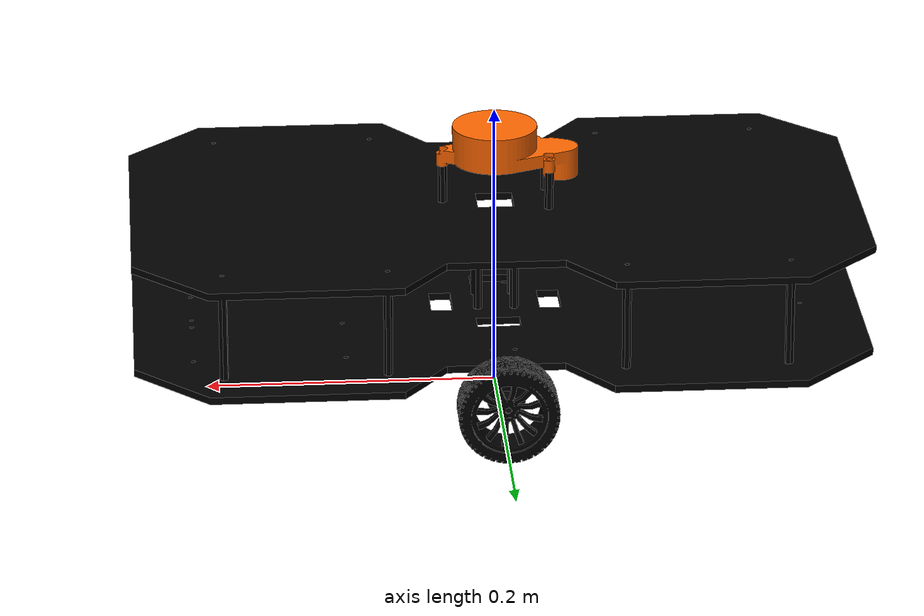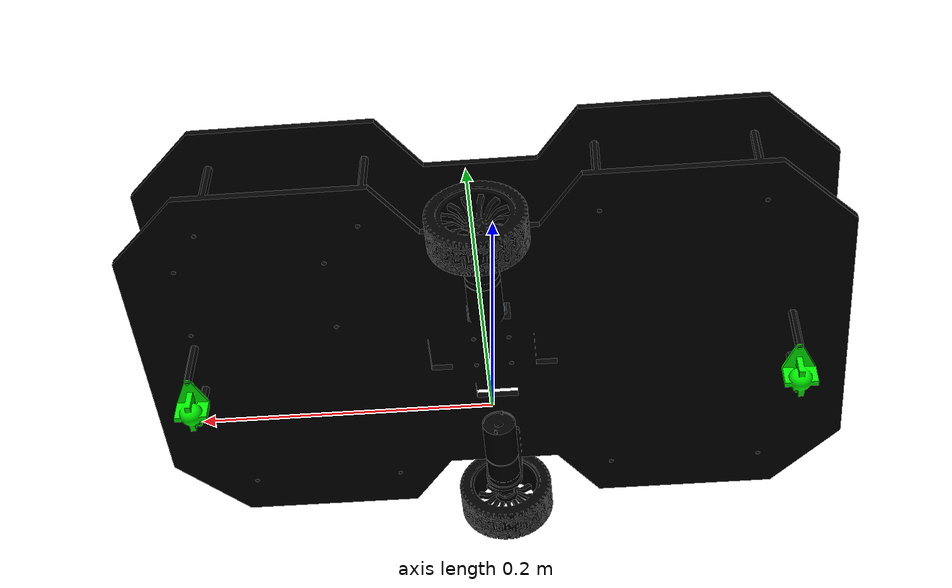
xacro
<?xml version="1.0"?>

<robot xmlns:xacro="http://ros.org/wiki/xacro" name="bumperbot">

    <!-- Mặc định dùng Ignition; có thể đổi khi chạy bằng is_ignition:=false. -->
    <xacro:arg name="is_ignition" default="true"/>
    <!--Chạy robot thật hay là robot mô phỏng-->
    <xacro:arg name="is_sim" default="true"/>

    <xacro:include filename = "$(find bumperbot_description)/urdf/bumperbot_gazebo.urdf.xacro"/>

    <!--Ros2 control-->
    <xacro:include filename = "$(find bumperbot_description)/urdf/bumperbot_ros2_control.xacro"/>
    <link name = 'base_footprint' />
    <!--Khai bao khớp và link base-->
    <link name = 'base_link'>
        <inertial>
            <origin xyz="0 0 0" rpy="0 0 0"/>
            <mass value="1.86646"/>
            <inertia ixx="0.01526994144" ixy="2.51002e-06" ixz="7.214361e-05"
                     iyy="0.03974477763" iyz="-4.9692e-07" izz="0.04941585770"/>
        </inertial>
        <visual>
            <origin xyz="0 0 0" rpy="0 0 0"/>
            <geometry>
                <mesh filename = "package://bumperbot_description/meshes/base.STL" scale = "0.001 0.001 0.001"/>
            </geometry>

            <material name="black">
                <color rgba="0 0 0 1"/>
            </material>
        </visual>

        <!-- Hop bao STL: x/y = +/-0.25/0.15 m, z = -0.035..0.11 m. -->
        <collision>
            <origin xyz="0 0 0.0375" rpy="0 0 0"/>
            <geometry>
                <box size="0.5 0.3 0.145"/>
            </geometry>
        </collision>
    </link>

    <joint name = 'base_footprint_joint' type = 'fixed'>
        <parent link ='base_footprint'/>
        <child link = 'base_link'/>
        <origin rpy="0 0 0" xyz="0 0 0.05413"/>
    </joint>

    <!--Khai bao khớp và link cho bánh xe phải-->

    <link name = "wheel_right_link" >
        <!-- SolidWorks: g -> kg, g*mm^2 -> kg*m^2 (x 1e-9).
             Doi dau cac tich quan tinh (positive tensor notation) cho URDF.
             COM va truc quan tinh duoc xoay cung mesh quanh X: -pi/2. -->
        <inertial>
            <origin xyz="0 -0.00004 0" rpy="0 0 0"/>
            <mass value="0.03517"/>
            <inertia ixx="1.538638e-05" ixy="-4.7e-10" ixz="0"
                     iyy="1.538669e-05" iyz="0" izz="2.578589e-05"/>
        </inertial>
        <visual>
            <origin xyz="0 0 0" rpy="0 0 0"/>
            <geometry>
                <mesh filename = "package://bumperbot_description/meshes/wheel_68mm.STL" scale = "0.001 0.001 0.001"/>
            </geometry>

            <material name="black">
                <color rgba="0 0 0 1"/>
            </material>
        </visual>
        <!-- Tru banh theo STL: R=34 mm, day=31.75 mm, tam Z=-2.375 mm.
             Xoay -pi/2 dua truc tru sang Y va tam sang Y=-2.375 mm. -->
        <collision>
            <origin xyz="0 -0.002375 0" rpy="${-pi/2} 0 0"/>
            <geometry>
                <cylinder radius="0.034" length="0.03175"/>
            </geometry>
        </collision>
    </link>

    <joint name = "wheel_right_base_joint" type = "continuous">
        <parent link = "base_link"/>
        <child link = "wheel_right_link"/>
        <origin xyz="0 -0.12825 -0.02013" rpy="0 0 0"/>
        <axis xyz="0 1 0"/>
    </joint>

    <link name = "wheel_left_link" >
        <!-- Cung thong so banh phai; COM va truc quan tinh xoay +pi/2. -->
        <inertial>
            <origin xyz="0 0.00004 0" rpy="0 0 0"/>
            <mass value="0.03517"/>
            <inertia ixx="1.538638e-05" ixy="-4.7e-10" ixz="0"
                     iyy="1.538669e-05" iyz="0" izz="2.578589e-05"/>
        </inertial>
        <visual>
            <origin xyz="0 0 0" rpy="${-pi} ${-pi} 0"/>
            <geometry>
                <mesh filename = "package://bumperbot_description/meshes/wheel_68mm.STL" scale = "0.001 0.001 0.001"/>
            </geometry>

            <material name="black">
                <color rgba="0 0 0 1"/>
            </material>
        </visual>
        <!-- Banh trai doi xung: tam tru Y=+2.375 mm. -->
        <collision>
            <origin xyz="0 0.002375 0" rpy="${pi/2} 0 0"/>
            <geometry>
                <cylinder radius="0.034" length="0.03175"/>
            </geometry>
        </collision>
    </link>

    <joint name = "wheel_left_base_joint" type = "continuous">
        <parent link = "base_link"/>
        <child link = "wheel_left_link"/>
        <origin xyz="0 +0.12825 -0.02013" rpy="0 0 0"/>
        <axis xyz="0 1 0"/>
    </joint>

    <link name = "caster_front_link" >
        <!-- Quan tinh tai COM tu SolidWorks, don vi kg va kg*m^2. -->
        <inertial>
            <origin xyz="-0.00003 0 0.00376" rpy="0 0 0"/>
            <mass value="0.00452"/>
            <inertia ixx="3.3451e-07" ixy="0" ixz="-1.5e-10"
                     iyy="2.4987e-07" iyz="0" izz="2.9746e-07"/>
        </inertial>
        <visual>
            <origin xyz="0 0 0" rpy="0 0 0"/>
            <geometry>
                <mesh filename = "package://bumperbot_description/meshes/ban_mat_trau_hoan_chinh.STL" scale = "0.001 0.001 0.001"/>
            </geometry>

            <material name="black">
                <color rgba="0 1 0 1"/>
            </material>
        </visual>
        <!-- Chi mo phong vien bi tiep dat R=8 mm, tam tai goc link.
             Gia do caster van hien thi bang STL. -->
        <collision>
            <origin xyz="0 0 0" rpy="0 0 0"/>
            <geometry>
                <sphere radius="0.008"/>
            </geometry>
        </collision>
    </link>

    <joint name = "caster_front_base_joint" type = "fixed">
        <parent link = "base_link"/>
        <child link = "caster_front_link"/>
        <origin xyz="0.21 0.0 -0.04613" rpy="0 0 0"/>
    </joint>

    <link name = "caster_rear_link" >
        <inertial>
            <origin xyz="-0.00003 0 0.00376" rpy="0 0 0"/>
            <mass value="0.00452"/>
            <inertia ixx="3.3451e-07" ixy="0" ixz="-1.5e-10"
                     iyy="2.4987e-07" iyz="0" izz="2.9746e-07"/>
        </inertial>
        <visual>
            <origin xyz="0 0 0" rpy="0 0 0"/>
            <geometry>
                <mesh filename = "package://bumperbot_description/meshes/ban_mat_trau_hoan_chinh.STL" scale = "0.001 0.001 0.001"/>
            </geometry>

            <material name="black">
                <color rgba="0 1 0 1"/>
            </material>
        </visual>
        <!-- Vien bi caster sau cung R=8 mm nhu caster truoc. -->
        <collision>
            <origin xyz="0 0 0" rpy="0 0 0"/>
            <geometry>
                <sphere radius="0.008"/>
            </geometry>
        </collision>
    </link>

    <joint name = "caster_rear_base_joint" type = "fixed">
        <parent link = "base_link"/>
        <child link = "caster_rear_link"/>
        <origin xyz="-0.21 0.0 -0.04613" rpy="0 0 0"/>
    </joint>

        <!--Khai bao khớp và link cho cảm biến IMU-->
    <link name = "imu_link">
        <inertial>

        <origin xyz="-0.00552433659106688 0.000168210391520346 0.000514000497342681" rpy="0 0 0" />

        <mass value="0.000528415362211671" />

        <inertia  ixx="1.46176048428261E-08" ixy="1.40015117949421E-10" ixz="-1.99633872937403E-12"

                iyy="8.59662482954888E-09" iyz="7.52375112767959E-12"

                izz="2.30279421279312E-08" />

        </inertial>

        <visual>
            <origin xyz = "0 0 0" rpy = "0 0 0"/>
            <geometry>
                <mesh filename="package://bumperbot_description/meshes/IMU.STL" scale = "0.001 0.001 0.001"/>
            </geometry>
            <material name="green">
                <color rgba="0.5 0.6 0.7 1"/>
            </material>

        </visual>

        <!-- Hop bao IMU theo STL, don vi m. -->
        <collision>
            <origin xyz="0.0025 0 0.0035" rpy="0 0 0"/>
            <geometry>
                <box size="0.037 0.032 0.007"/>
            </geometry>
        </collision>
    </link>

    <joint name="imu_base_joint" type = "fixed">
        <parent link = "base_link"/>
        <child link = "imu_link"/>
        <origin xyz="0 0 0.04" rpy="0 0 0"/>
        <axis xyz="0 0 0"/>
    </joint>

    <link name = 'laser_link'>
        <visual>
            <origin xyz="0 0 0" rpy="0 0 0"/>
            <geometry>
                <mesh filename="package://bumperbot_description/meshes/lidar_ld14.STL" scale = "0.001 0.001 0.001"/>
            </geometry>
            <material name="orange">
                <color rgba="1 0.4 0 1"/>
            </material>
        </visual>

        <collision>
            <geometry>
                <mesh filename="package://bumperbot_description/meshes/lidar_ld14.STL" scale = "0.001 0.001 0.001"/>
            </geometry>
        </collision>
        <inertial>
            <origin xyz="-0.00659 0 0.01032" rpy="0 0 0"/>
            <mass value="0.10394"/>
            <inertia ixx="2.677751e-5"  ixy="0.0"           ixz="-7.33801e-6"
                                        iyy="5.269966e-5"   iyz="0.0"
                                                            izz="6.483565e-5"/>
        </inertial>
    </link>

    <joint name = "laser_base_joint" type = "fixed">
        <parent link = "base_link"/>
        <child link="laser_link"/>
        <origin xyz="0 0 0.11" rpy="0 0 0"/>
    </joint>

</robot>
